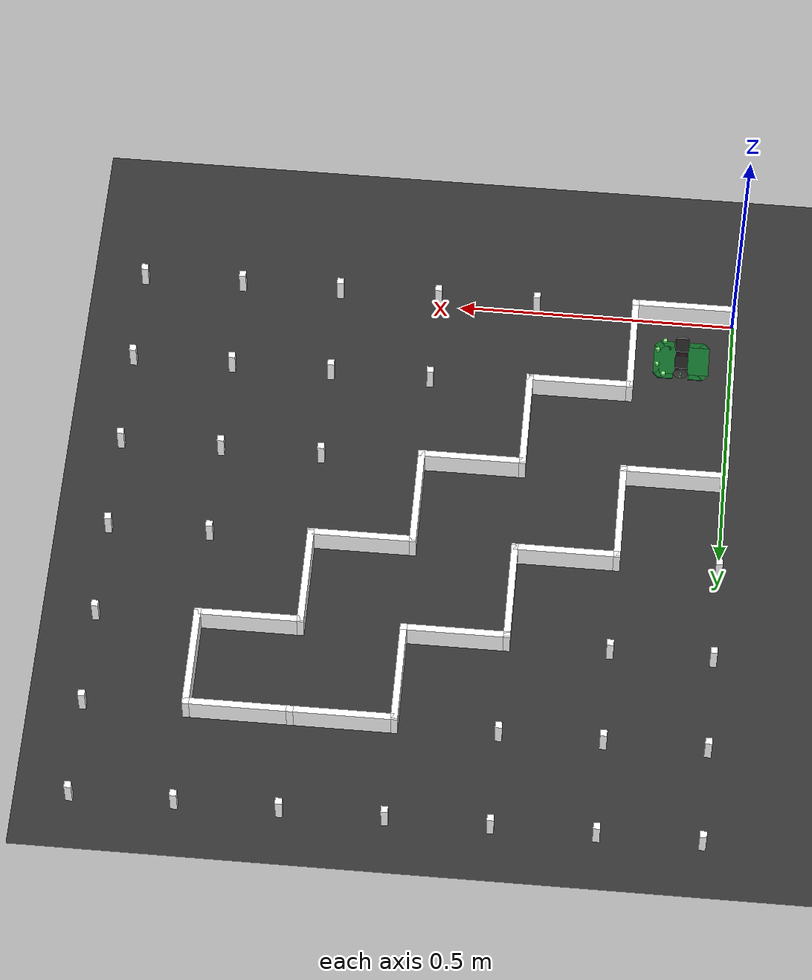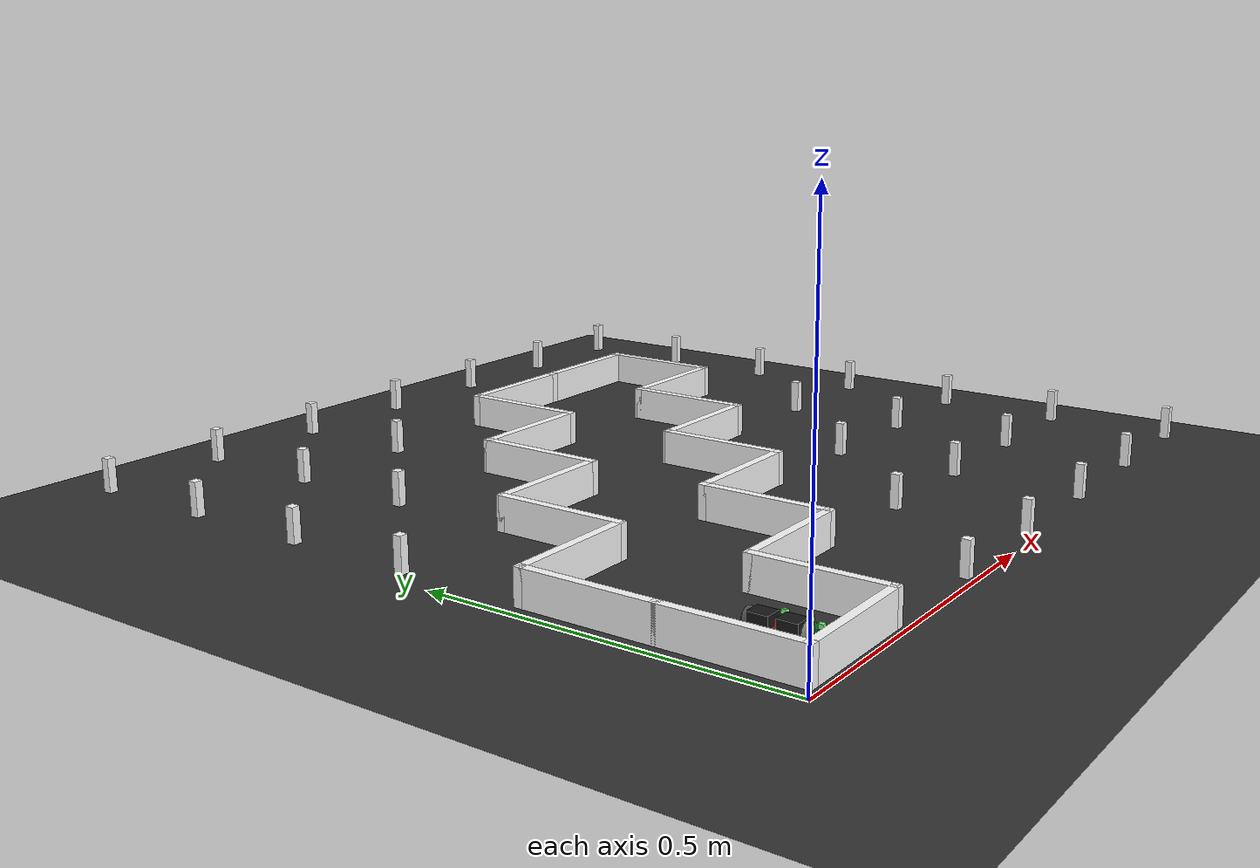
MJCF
<mujoco model="maze">
<option timestep="0.01" />
    <worldbody>
<!-- メイン光源を上から追加 -->
<light pos="0 0 3" dir="0 0 -1" diffuse="1 1 1" specular="0.5 0.5 0.5" directional="true"/>
<!-- サブ光源を複数の角度から追加 -->
<light pos="2 -2 2" dir="-1 1 -1" diffuse="0.5 0.5 0.5" specular="0.3 0.3 0.3" directional="true"/>
<light pos="-2 2 2" dir="1 -1 -1" diffuse="0.5 0.5 0.5" specular="0.3 0.3 0.3" directional="true"/>

        <body pos="0.09 0.09 0.0126" euler="0 0 0" name="mouse_body">
            <joint name='slider_x' type='slide' pos='0 0 0' axis='1 0 0'/>
            <joint name='slider_y' type='slide' pos='0 0 0' axis='0 1 0'/>
            <joint name='slider_z' type='slide' pos='0 0 0' axis='0 0 1' limited="true" range='0 0.035'/>
            <joint name="yaw" type="hinge" axis="0 0 1" limited="false" damping="0" />
            <body name="torso">
                <geom name="mein_body1" type="box" friction="0.0 0.0 0.0" size="0.05 0.03 0.0008" rgba="0.05 0.4 0.15 1" pos="0 0 0.002" mass="4.65e-3"/>
                <geom name="mein_body_chip1" type="box" friction="0.0 0.0 0.0" size="0.00707 0.00707 0.0008" rgba="0.05 0.4 0.15 1" pos="0.04 0.03 0.002" euler="0 0 45" mass="4.65e-3"/>
                <geom name="mein_body_chip2" type="box" friction="0.0 0.0 0.0" size="0.00707 0.00707 0.0008" rgba="0.05 0.4 0.15 1" pos="0.04 -0.03 0.002" euler="0 0 45" mass="4.65e-3"/>
                <geom name="mein_body_chip3" type="box" friction="0.0 0.0 0.0" size="0.00707 0.00707 0.0008" rgba="0.05 0.4 0.15 1" pos="-0.04 0.03 0.002" euler="0 0 45" mass="4.65e-3"/>
                <geom name="mein_body_chip4" type="box" friction="0.0 0.0 0.0" size="0.00707 0.00707 0.0008" rgba="0.05 0.4 0.15 1" pos="-0.04 -0.03 0.002" euler="0 0 45" mass="4.65e-3"/>
                <geom name="mein_body4" type="box" friction="0.0 0.0 0.0" size="0.013 0.04 0.0008"  rgba="0.05 0.4 0.15 1" pos="-0.027 0 0.002" mass="4.65e-3"/>
                <geom name="mein_body5" type="box" friction="0.0 0.0 0.0" size="0.013 0.04 0.0008"  rgba="0.05 0.4 0.15 1" pos="0.027 0 0.002" mass="4.65e-3"/>
                <site name="sizemiru" type="box" size="0.05 0.04 0.0008"  rgba="0.4 0.2 0.5 0" pos="0.0 0 0.00"/>
                <!--接触判定領域（この中に入ってるgeomが接触すると，センサ値としてその値を取得できる）-->
                <site name = "hit_box1" type = "box" size = "0.02 0.043 0.03" pos="0.033 0 0.0225" rgba="1 1 0 0"/>
                <site name = "hit_box2" type = "box" size = "0.06 0.08 0.03" pos="-0.0 0 0.0225" rgba="1 1 0 0"/>
            </body>

            <site name="sensor_left_front" type="box" size="0.003 0.003 0.003" pos="0.031 0.036 0.01" zaxis="1 0 0.01" rgba=".5 1 .5 1"/>
              <!-- zaxisの３つめ　0.1でちょい上向き -->
            <site name="sensor_left_side" type="box" size="0.003 0.003 0.003" pos="0.043 0.016 0.01" zaxis="0.25 1 0" rgba=".5 1 .5 1"/>
            <site name="sensor_right_front" type="box" size="0.003 0.003 0.003" pos="0.031 -0.036 0.01" zaxis="1 0 0.01" rgba=".5 1 .5 1"/>
            <site name="sensor_right_side" type="box" size="0.003 0.003 0.003" pos="0.043 -0.016 0.01" zaxis="0.25 -1 0" rgba=".5 1 .5 1"/>
            <site name="accerometer" type="sphere" size="0.001 0.001" pos="0 0 0.0"/>
            <site name="gyro" type="box" size="0.001 0.001 0.001" pos="0 0 0" />
            <site name="velocimeter" type="box" size="0.001 0.001 0.001" pos="0 0 0"/>

             <body name="left wheel" pos="-0.0 0.036 0.0135" zaxis="0 1 0">
                <joint name="left wheel joint" type="hinge" axis="0 0 1" limited="false" damping='9.6e-5' />
                <geom name="left_wheel" type="ellipsoid" size="0.0135 0.0135 0.0035" rgba=".3 .3 0.3 1" mass="5e-3"  friction="0 0 0"/>
                <site type="box" size = "0.0012 0.008 0.004" rgba=".5 1 .5 1"/>
            </body>

            <body name="right wheel" pos="-0.0 -0.036 0.0135" zaxis="0 1 0">
                <joint name="right wheel joint" type="hinge" axis="0 0 1" limited="false" damping='9.6e-5' />
                <geom name="right_wheel" type="ellipsoid" size="0.0135 0.0135 0.0035" mass="5e-3" friction="0 0 0"/> #直径27mmのタイヤ
                <site type="box" size = "0.0012 0.008 0.004" rgba=".5 1 .5 1"/>
            </body>

            <body name="motorbox1" pos="0 -0.018 0.0135" >
                <geom type="box" size="0.0117 0.0135 0.0117" rgba="0.1 0.1 0.1 1" mass="50e-3"/>
            </body>

            <body name="motorbox2" pos="0 0.018 0.0135">
                <geom type="box" size="0.0117 0.0135 0.0117" rgba="0.1 0.1 0.1 1" mass="50e-3"/>
            </body>

            <body name="core" pos="0 0 0.0135">
                <geom name="core" type="box" size="0.003 0.003 0.003" rgba="1 0 0 1" mass="50e-3"/>
            </body>

            <!--トラッキングカメラを装着-->
            <camera name="camera_name" mode="track" pos="-0.4 0 0.8" euler="0 -30 -90" fovy="60"/>
            <camera name="side_name" mode="targetbody" pos="0 0.2 0.2" euler="-40 0 180" fovy="60"/>

             <geom name="hitsafer_mein_body1" type="box" friction="0.0 0.0 0.0" size="0.05 0.03 0.015" rgba="0.05 0.4 0.15 0" pos="0 0 0.03" mass="4.65e-5"/>
                <geom name="hitsafer_mein_body_chip1" type="box" friction="0.0 0.0 0.0" size="0.00707 0.00707 0.015" rgba="0.05 0.4 0.15 0" pos="0.04 0.03 0.03" euler="0 0 45" mass="4.65e-5"/>
                <geom name="hitsafer_mein_body_chip2" type="box" friction="0.0 0.0 0.0" size="0.00707 0.00707 0.015" rgba="0.05 0.4 0.15 0" pos="0.04 -0.03 0.03" euler="0 0 45" mass="4.65e-5"/>
                <geom name="hitsafer_mein_body_chip3" type="box" friction="0.0 0.0 0.0" size="0.00707 0.00707 0.015" rgba="0.05 0.4 0.15 0" pos="-0.04 0.03 0.03" euler="0 0 45" mass="4.65e-5"/>
                <geom name="hitsafer_mein_body_chip4" type="box" friction="0.0 0.0 0.0" size="0.00707 0.00707 0.015" rgba="0.05 0.4 0.15 0" pos="-0.04 -0.03 0.03" euler="0 0 45" mass="4.65e-5"/>
                <geom name="hitsafer_mein_body4" type="box" friction="0.0 0.0 0.0" size="0.013 0.04 0.015"  rgba="0.05 0.4 0.15 0" pos="-0.027 0 0.03" mass="4.65e-5"/>
                <geom name="hitsafer_mein_body5" type="box" friction="0.0 0.0 0.0" size="0.013 0.04 0.015"  rgba="0.05 0.4 0.15 0" pos="0.027 0 0.03" mass="4.65e-5"/>

        </body>

                <!--ベース板-->
            <body name="base_plate" pos="0.45 0.45 0.015">
        <geom type="plane" mass="100" size="0.726 0.726 0.006" rgba="0.2 0.2 0.2 1" friction="0.0 0.0 0.0"/>
        </body>

        <!-- Column 1-->
        <body pos="0.0 0.0 0.037">
            <body pos="0 0 -0.0005">
                <geom type="box" mass="0.01" size="0.006 0.006 0.0245" rgba="1 1 1 1"/>
            </body>
        </body>

        <!-- Column 2-->
        <body pos="0.18 0.0 0.037">
            <body pos="0 0 -0.0005">
                <geom type="box" mass="0.01" size="0.006 0.006 0.0245" rgba="1 1 1 1"/>
            </body>
        </body>

        <!-- Column 3-->
        <body pos="0.36 0.0 0.037">
            <body pos="0 0 -0.0005">
                <geom type="box" mass="0.01" size="0.006 0.006 0.0245" rgba="1 1 1 1"/>
            </body>
        </body>

        <!-- Column 4-->
        <body pos="0.54 0.0 0.037">
            <body pos="0 0 -0.0005">
                <geom type="box" mass="0.01" size="0.006 0.006 0.0245" rgba="1 1 1 1"/>
            </body>
        </body>

        <!-- Column 5-->
        <body pos="0.72 0.0 0.037">
            <body pos="0 0 -0.0005">
                <geom type="box" mass="0.01" size="0.006 0.006 0.0245" rgba="1 1 1 1"/>
            </body>
        </body>

        <!-- Column 6-->
        <body pos="0.8999999999999999 0.0 0.037">
            <body pos="0 0 -0.0005">
                <geom type="box" mass="0.01" size="0.006 0.006 0.0245" rgba="1 1 1 1"/>
            </body>
        </body>

        <!-- Column 7-->
        <body pos="1.08 0.0 0.037">
            <body pos="0 0 -0.0005">
                <geom type="box" mass="0.01" size="0.006 0.006 0.0245" rgba="1 1 1 1"/>
            </body>
        </body>

        <!-- Column 8-->
        <body pos="0.0 0.18 0.037">
            <body pos="0 0 -0.0005">
                <geom type="box" mass="0.01" size="0.006 0.006 0.0245" rgba="1 1 1 1"/>
            </body>
        </body>

        <!-- Column 9-->
        <body pos="0.18 0.18 0.037">
            <body pos="0 0 -0.0005">
                <geom type="box" mass="0.01" size="0.006 0.006 0.0245" rgba="1 1 1 1"/>
            </body>
        </body>

        <!-- Column 10-->
        <body pos="0.36 0.18 0.037">
            <body pos="0 0 -0.0005">
                <geom type="box" mass="0.01" size="0.006 0.006 0.0245" rgba="1 1 1 1"/>
            </body>
        </body>

        <!-- Column 11-->
        <body pos="0.54 0.18 0.037">
            <body pos="0 0 -0.0005">
                <geom type="box" mass="0.01" size="0.006 0.006 0.0245" rgba="1 1 1 1"/>
            </body>
        </body>

        <!-- Column 12-->
        <body pos="0.72 0.18 0.037">
            <body pos="0 0 -0.0005">
                <geom type="box" mass="0.01" size="0.006 0.006 0.0245" rgba="1 1 1 1"/>
            </body>
        </body>

        <!-- Column 13-->
        <body pos="0.8999999999999999 0.18 0.037">
            <body pos="0 0 -0.0005">
                <geom type="box" mass="0.01" size="0.006 0.006 0.0245" rgba="1 1 1 1"/>
            </body>
        </body>

        <!-- Column 14-->
        <body pos="1.08 0.18 0.037">
            <body pos="0 0 -0.0005">
                <geom type="box" mass="0.01" size="0.006 0.006 0.0245" rgba="1 1 1 1"/>
            </body>
        </body>

        <!-- Column 15-->
        <body pos="0.0 0.36 0.037">
            <body pos="0 0 -0.0005">
                <geom type="box" mass="0.01" size="0.006 0.006 0.0245" rgba="1 1 1 1"/>
            </body>
        </body>

        <!-- Column 16-->
        <body pos="0.18 0.36 0.037">
            <body pos="0 0 -0.0005">
                <geom type="box" mass="0.01" size="0.006 0.006 0.0245" rgba="1 1 1 1"/>
            </body>
        </body>

        <!-- Column 17-->
        <body pos="0.36 0.36 0.037">
            <body pos="0 0 -0.0005">
                <geom type="box" mass="0.01" size="0.006 0.006 0.0245" rgba="1 1 1 1"/>
            </body>
        </body>

        <!-- Column 18-->
        <body pos="0.54 0.36 0.037">
            <body pos="0 0 -0.0005">
                <geom type="box" mass="0.01" size="0.006 0.006 0.0245" rgba="1 1 1 1"/>
            </body>
        </body>

        <!-- Column 19-->
        <body pos="0.72 0.36 0.037">
            <body pos="0 0 -0.0005">
                <geom type="box" mass="0.01" size="0.006 0.006 0.0245" rgba="1 1 1 1"/>
            </body>
        </body>

        <!-- Column 20-->
        <body pos="0.8999999999999999 0.36 0.037">
            <body pos="0 0 -0.0005">
                <geom type="box" mass="0.01" size="0.006 0.006 0.0245" rgba="1 1 1 1"/>
            </body>
        </body>

        <!-- Column 21-->
        <body pos="1.08 0.36 0.037">
            <body pos="0 0 -0.0005">
                <geom type="box" mass="0.01" size="0.006 0.006 0.0245" rgba="1 1 1 1"/>
            </body>
        </body>

        <!-- Column 22-->
        <body pos="0.0 0.54 0.037">
            <body pos="0 0 -0.0005">
                <geom type="box" mass="0.01" size="0.006 0.006 0.0245" rgba="1 1 1 1"/>
            </body>
        </body>

        <!-- Column 23-->
        <body pos="0.18 0.54 0.037">
            <body pos="0 0 -0.0005">
                <geom type="box" mass="0.01" size="0.006 0.006 0.0245" rgba="1 1 1 1"/>
            </body>
        </body>

        <!-- Column 24-->
        <body pos="0.36 0.54 0.037">
            <body pos="0 0 -0.0005">
                <geom type="box" mass="0.01" size="0.006 0.006 0.0245" rgba="1 1 1 1"/>
            </body>
        </body>

        <!-- Column 25-->
        <body pos="0.54 0.54 0.037">
            <body pos="0 0 -0.0005">
                <geom type="box" mass="0.01" size="0.006 0.006 0.0245" rgba="1 1 1 1"/>
            </body>
        </body>

        <!-- Column 26-->
        <body pos="0.72 0.54 0.037">
            <body pos="0 0 -0.0005">
                <geom type="box" mass="0.01" size="0.006 0.006 0.0245" rgba="1 1 1 1"/>
            </body>
        </body>

        <!-- Column 27-->
        <body pos="0.8999999999999999 0.54 0.037">
            <body pos="0 0 -0.0005">
                <geom type="box" mass="0.01" size="0.006 0.006 0.0245" rgba="1 1 1 1"/>
            </body>
        </body>

        <!-- Column 28-->
        <body pos="1.08 0.54 0.037">
            <body pos="0 0 -0.0005">
                <geom type="box" mass="0.01" size="0.006 0.006 0.0245" rgba="1 1 1 1"/>
            </body>
        </body>

        <!-- Column 29-->
        <body pos="0.0 0.72 0.037">
            <body pos="0 0 -0.0005">
                <geom type="box" mass="0.01" size="0.006 0.006 0.0245" rgba="1 1 1 1"/>
            </body>
        </body>

        <!-- Column 30-->
        <body pos="0.18 0.72 0.037">
            <body pos="0 0 -0.0005">
                <geom type="box" mass="0.01" size="0.006 0.006 0.0245" rgba="1 1 1 1"/>
            </body>
        </body>

        <!-- Column 31-->
        <body pos="0.36 0.72 0.037">
            <body pos="0 0 -0.0005">
                <geom type="box" mass="0.01" size="0.006 0.006 0.0245" rgba="1 1 1 1"/>
            </body>
        </body>

        <!-- Column 32-->
        <body pos="0.54 0.72 0.037">
            <body pos="0 0 -0.0005">
                <geom type="box" mass="0.01" size="0.006 0.006 0.0245" rgba="1 1 1 1"/>
            </body>
        </body>

        <!-- Column 33-->
        <body pos="0.72 0.72 0.037">
            <body pos="0 0 -0.0005">
                <geom type="box" mass="0.01" size="0.006 0.006 0.0245" rgba="1 1 1 1"/>
            </body>
        </body>

        <!-- Column 34-->
        <body pos="0.8999999999999999 0.72 0.037">
            <body pos="0 0 -0.0005">
                <geom type="box" mass="0.01" size="0.006 0.006 0.0245" rgba="1 1 1 1"/>
            </body>
        </body>

        <!-- Column 35-->
        <body pos="1.08 0.72 0.037">
            <body pos="0 0 -0.0005">
                <geom type="box" mass="0.01" size="0.006 0.006 0.0245" rgba="1 1 1 1"/>
            </body>
        </body>

        <!-- Column 36-->
        <body pos="0.0 0.8999999999999999 0.037">
            <body pos="0 0 -0.0005">
                <geom type="box" mass="0.01" size="0.006 0.006 0.0245" rgba="1 1 1 1"/>
            </body>
        </body>

        <!-- Column 37-->
        <body pos="0.18 0.8999999999999999 0.037">
            <body pos="0 0 -0.0005">
                <geom type="box" mass="0.01" size="0.006 0.006 0.0245" rgba="1 1 1 1"/>
            </body>
        </body>

        <!-- Column 38-->
        <body pos="0.36 0.8999999999999999 0.037">
            <body pos="0 0 -0.0005">
                <geom type="box" mass="0.01" size="0.006 0.006 0.0245" rgba="1 1 1 1"/>
            </body>
        </body>

        <!-- Column 39-->
        <body pos="0.54 0.8999999999999999 0.037">
            <body pos="0 0 -0.0005">
                <geom type="box" mass="0.01" size="0.006 0.006 0.0245" rgba="1 1 1 1"/>
            </body>
        </body>

        <!-- Column 40-->
        <body pos="0.72 0.8999999999999999 0.037">
            <body pos="0 0 -0.0005">
                <geom type="box" mass="0.01" size="0.006 0.006 0.0245" rgba="1 1 1 1"/>
            </body>
        </body>

        <!-- Column 41-->
        <body pos="0.8999999999999999 0.8999999999999999 0.037">
            <body pos="0 0 -0.0005">
                <geom type="box" mass="0.01" size="0.006 0.006 0.0245" rgba="1 1 1 1"/>
            </body>
        </body>

        <!-- Column 42-->
        <body pos="1.08 0.8999999999999999 0.037">
            <body pos="0 0 -0.0005">
                <geom type="box" mass="0.01" size="0.006 0.006 0.0245" rgba="1 1 1 1"/>
            </body>
        </body>

        <!-- Column 43-->
        <body pos="0.0 1.08 0.037">
            <body pos="0 0 -0.0005">
                <geom type="box" mass="0.01" size="0.006 0.006 0.0245" rgba="1 1 1 1"/>
            </body>
        </body>

        <!-- Column 44-->
        <body pos="0.18 1.08 0.037">
            <body pos="0 0 -0.0005">
                <geom type="box" mass="0.01" size="0.006 0.006 0.0245" rgba="1 1 1 1"/>
            </body>
        </body>

        <!-- Column 45-->
        <body pos="0.36 1.08 0.037">
            <body pos="0 0 -0.0005">
                <geom type="box" mass="0.01" size="0.006 0.006 0.0245" rgba="1 1 1 1"/>
            </body>
        </body>

        <!-- Column 46-->
        <body pos="0.54 1.08 0.037">
            <body pos="0 0 -0.0005">
                <geom type="box" mass="0.01" size="0.006 0.006 0.0245" rgba="1 1 1 1"/>
            </body>
        </body>

        <!-- Column 47-->
        <body pos="0.72 1.08 0.037">
            <body pos="0 0 -0.0005">
                <geom type="box" mass="0.01" size="0.006 0.006 0.0245" rgba="1 1 1 1"/>
            </body>
        </body>

        <!-- Column 48-->
        <body pos="0.8999999999999999 1.08 0.037">
            <body pos="0 0 -0.0005">
                <geom type="box" mass="0.01" size="0.006 0.006 0.0245" rgba="1 1 1 1"/>
            </body>
        </body>

        <!-- Column 49-->
        <body pos="1.08 1.08 0.037">
            <body pos="0 0 -0.0005">
                <geom type="box" mass="0.01" size="0.006 0.006 0.0245" rgba="1 1 1 1"/>
            </body>
        </body>

        <!-- Wall 1-->
        <body pos="0.09 0.0 0.037">
            <body pos="0 0 -0.0005">
                <geom type="box" mass="0.01" size="0.084 0.006 0.0245" rgba="1 1 1 1"/>
            </body>
        </body>

        <!-- Wall 2-->
        <body pos="0.27 0.18 0.037">
            <body pos="0 0 -0.0005">
                <geom type="box" mass="0.01" size="0.084 0.006 0.0245" rgba="1 1 1 1"/>
            </body>
        </body>

        <!-- Wall 3-->
        <body pos="0.09 0.36 0.037">
            <body pos="0 0 -0.0005">
                <geom type="box" mass="0.01" size="0.084 0.006 0.0245" rgba="1 1 1 1"/>
            </body>
        </body>

        <!-- Wall 4-->
        <body pos="0.44999999999999996 0.36 0.037">
            <body pos="0 0 -0.0005">
                <geom type="box" mass="0.01" size="0.084 0.006 0.0245" rgba="1 1 1 1"/>
            </body>
        </body>

        <!-- Wall 5-->
        <body pos="0.27 0.54 0.037">
            <body pos="0 0 -0.0005">
                <geom type="box" mass="0.01" size="0.084 0.006 0.0245" rgba="1 1 1 1"/>
            </body>
        </body>

        <!-- Wall 6-->
        <body pos="0.63 0.54 0.037">
            <body pos="0 0 -0.0005">
                <geom type="box" mass="0.01" size="0.084 0.006 0.0245" rgba="1 1 1 1"/>
            </body>
        </body>

        <!-- Wall 7-->
        <body pos="0.44999999999999996 0.72 0.037">
            <body pos="0 0 -0.0005">
                <geom type="box" mass="0.01" size="0.084 0.006 0.0245" rgba="1 1 1 1"/>
            </body>
        </body>

        <!-- Wall 8-->
        <body pos="0.8099999999999999 0.72 0.037">
            <body pos="0 0 -0.0005">
                <geom type="box" mass="0.01" size="0.084 0.006 0.0245" rgba="1 1 1 1"/>
            </body>
        </body>

        <!-- Wall 9-->
        <body pos="0.63 0.8999999999999999 0.037">
            <body pos="0 0 -0.0005">
                <geom type="box" mass="0.01" size="0.084 0.006 0.0245" rgba="1 1 1 1"/>
            </body>
        </body>

        <!-- Wall 10-->
        <body pos="0.8099999999999999 0.8999999999999999 0.037">
            <body pos="0 0 -0.0005">
                <geom type="box" mass="0.01" size="0.084 0.006 0.0245" rgba="1 1 1 1"/>
            </body>
        </body>

        <!-- Wall 11-->
        <body pos="0.0 0.09 0.037">
            <body pos="0 0 -0.0005">
                <geom type="box" mass="0.01" size="0.006 0.093 0.0245" rgba="1 1 1 1"/>
            </body>
        </body>

        <!-- Wall 12-->
        <body pos="0.18 0.09 0.037">
            <body pos="0 0 -0.0005">
                <geom type="box" mass="0.01" size="0.006 0.093 0.0245" rgba="1 1 1 1"/>
            </body>
        </body>

        <!-- Wall 13-->
        <body pos="0.0 0.27 0.037">
            <body pos="0 0 -0.0005">
                <geom type="box" mass="0.01" size="0.006 0.093 0.0245" rgba="1 1 1 1"/>
            </body>
        </body>

        <!-- Wall 14-->
        <body pos="0.36 0.27 0.037">
            <body pos="0 0 -0.0005">
                <geom type="box" mass="0.01" size="0.006 0.093 0.0245" rgba="1 1 1 1"/>
            </body>
        </body>

        <!-- Wall 15-->
        <body pos="0.18 0.44999999999999996 0.037">
            <body pos="0 0 -0.0005">
                <geom type="box" mass="0.01" size="0.006 0.093 0.0245" rgba="1 1 1 1"/>
            </body>
        </body>

        <!-- Wall 16-->
        <body pos="0.54 0.44999999999999996 0.037">
            <body pos="0 0 -0.0005">
                <geom type="box" mass="0.01" size="0.006 0.093 0.0245" rgba="1 1 1 1"/>
            </body>
        </body>

        <!-- Wall 17-->
        <body pos="0.36 0.63 0.037">
            <body pos="0 0 -0.0005">
                <geom type="box" mass="0.01" size="0.006 0.093 0.0245" rgba="1 1 1 1"/>
            </body>
        </body>

        <!-- Wall 18-->
        <body pos="0.72 0.63 0.037">
            <body pos="0 0 -0.0005">
                <geom type="box" mass="0.01" size="0.006 0.093 0.0245" rgba="1 1 1 1"/>
            </body>
        </body>

        <!-- Wall 19-->
        <body pos="0.54 0.8099999999999999 0.037">
            <body pos="0 0 -0.0005">
                <geom type="box" mass="0.01" size="0.006 0.093 0.0245" rgba="1 1 1 1"/>
            </body>
        </body>

        <!-- Wall 20-->
        <body pos="0.8999999999999999 0.8099999999999999 0.037">
            <body pos="0 0 -0.0005">
                <geom type="box" mass="0.01" size="0.006 0.093 0.0245" rgba="1 1 1 1"/>
            </body>
        </body>
    </worldbody>

    <actuator>
        <motor name="right" joint="right wheel joint" gear="9.0e-3" ctrllimited="true" ctrlrange="-1 1"/> ctrlrangeで入力の値の範囲を決められる
        <motor name="left"  joint="left wheel joint"  gear="9.0e-3" ctrllimited="true" ctrlrange="-1 1"/>
    </actuator>

    <sensor>
        <rangefinder name="LF" site="sensor_left_front" cutoff="0.3"/>
        <rangefinder name="LS" site="sensor_left_side" cutoff="0.3"/>
        <rangefinder name="RF" site="sensor_right_front" cutoff="0.3"/>
        <rangefinder name="RS" site="sensor_right_side" cutoff="0.3"/>
        <touch name = "HB1" site = "hit_box1"/>
        <touch name = "HB2" site = "hit_box2"/>
        <accelerometer name="Accel" site="accerometer"/>
        <gyro name="Gyro" site="gyro" noise="0.0001"/>
        <velocimeter name="Veloci" site="velocimeter"/>
    </sensor>

</mujoco>
